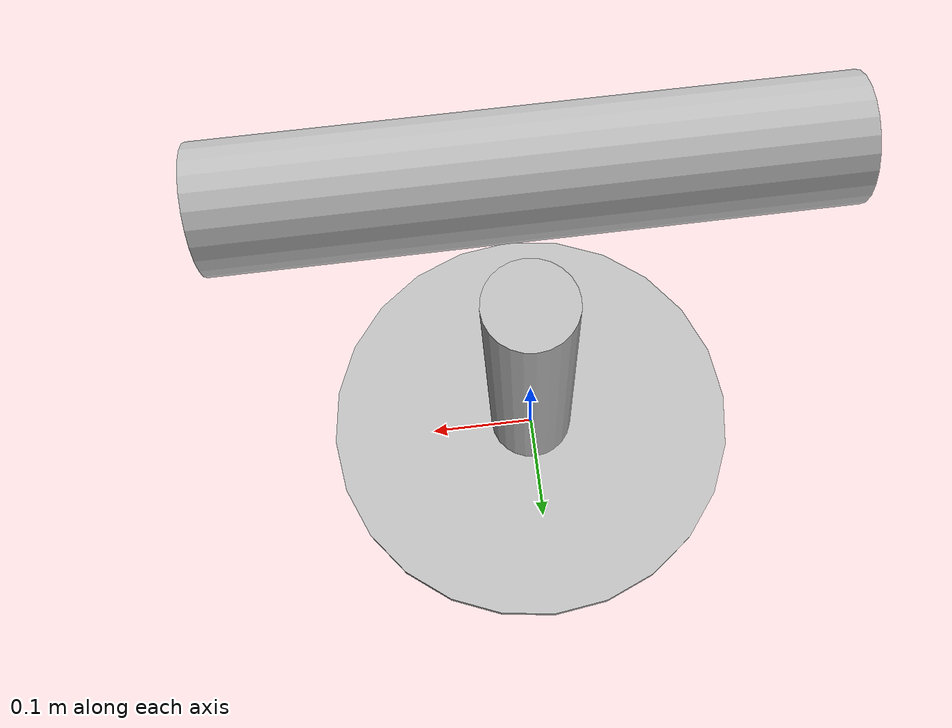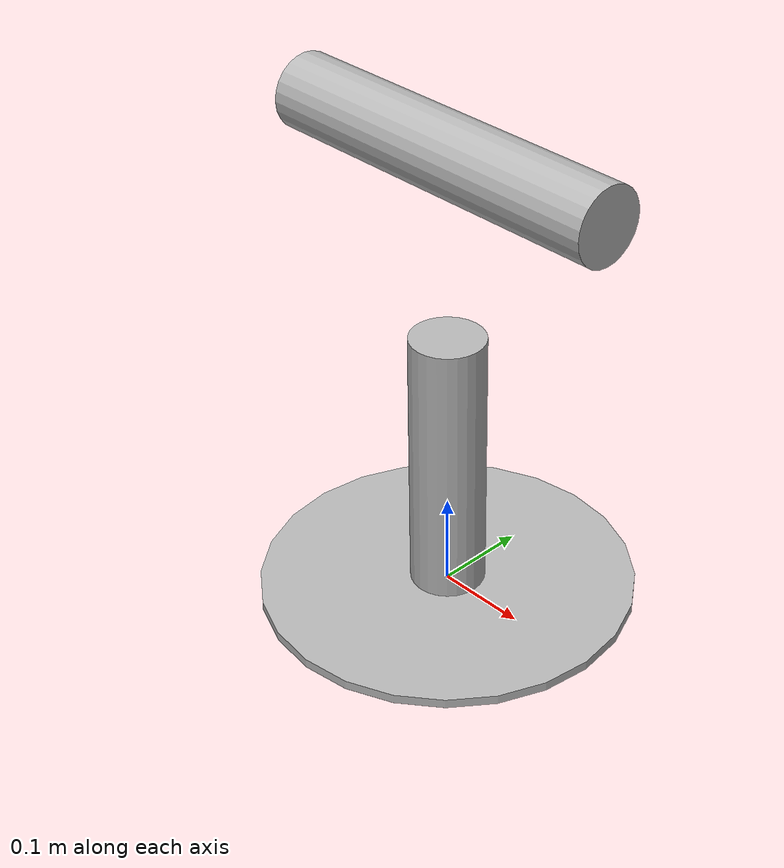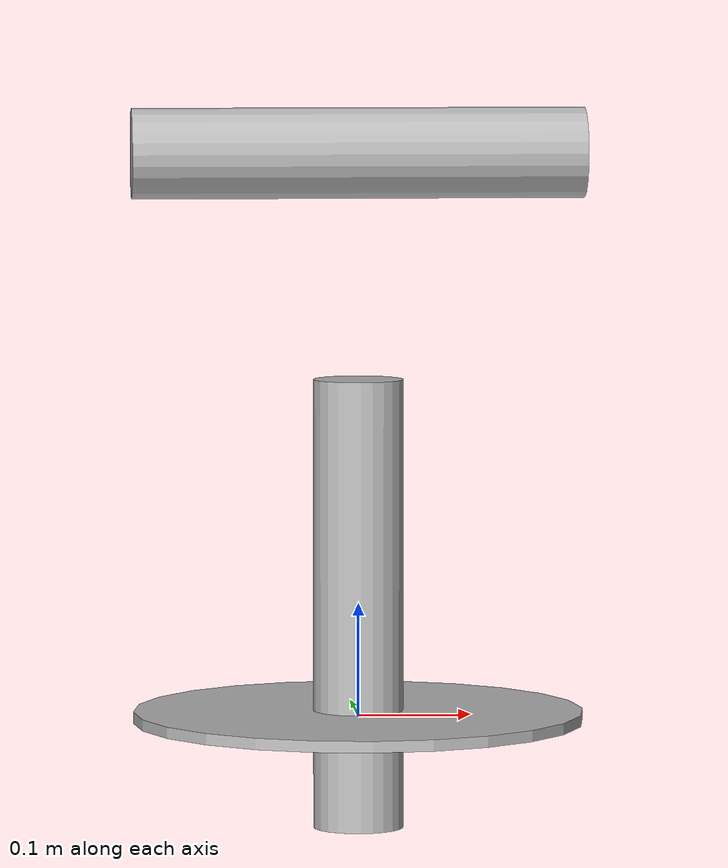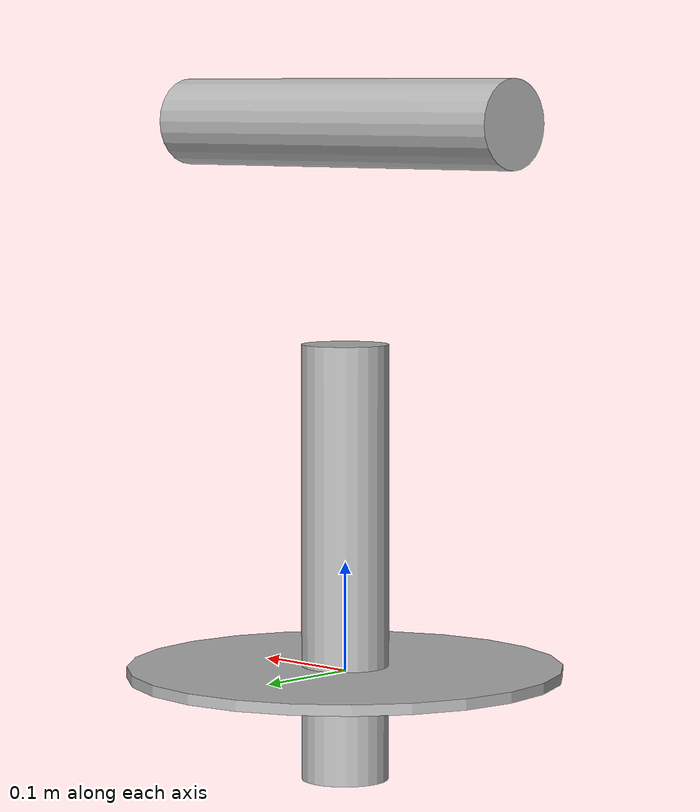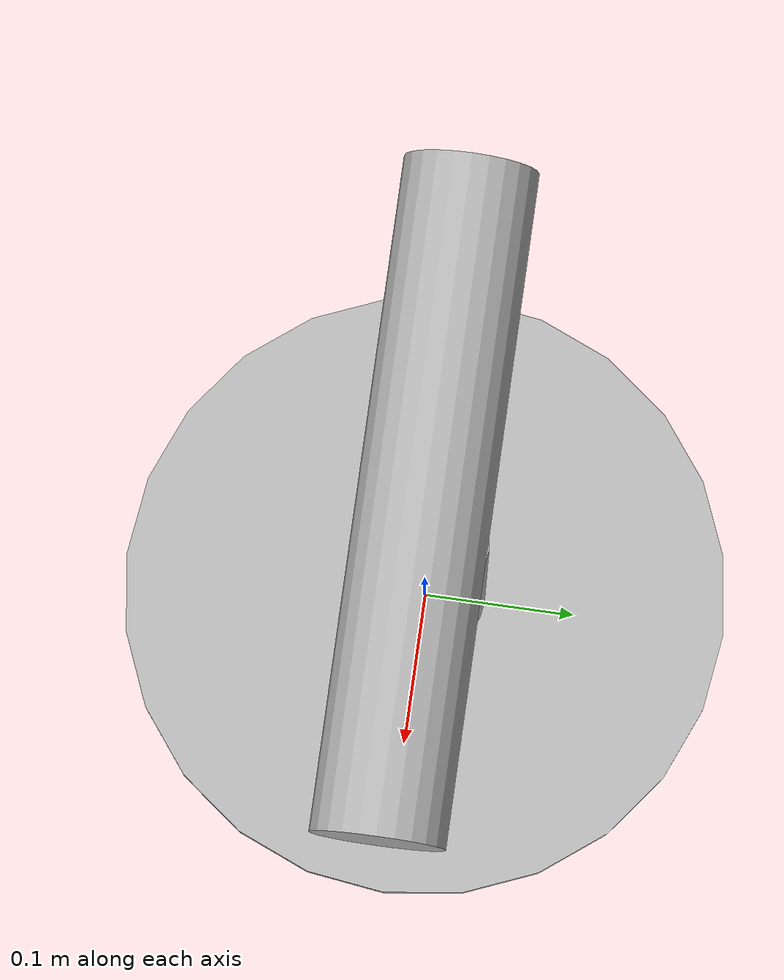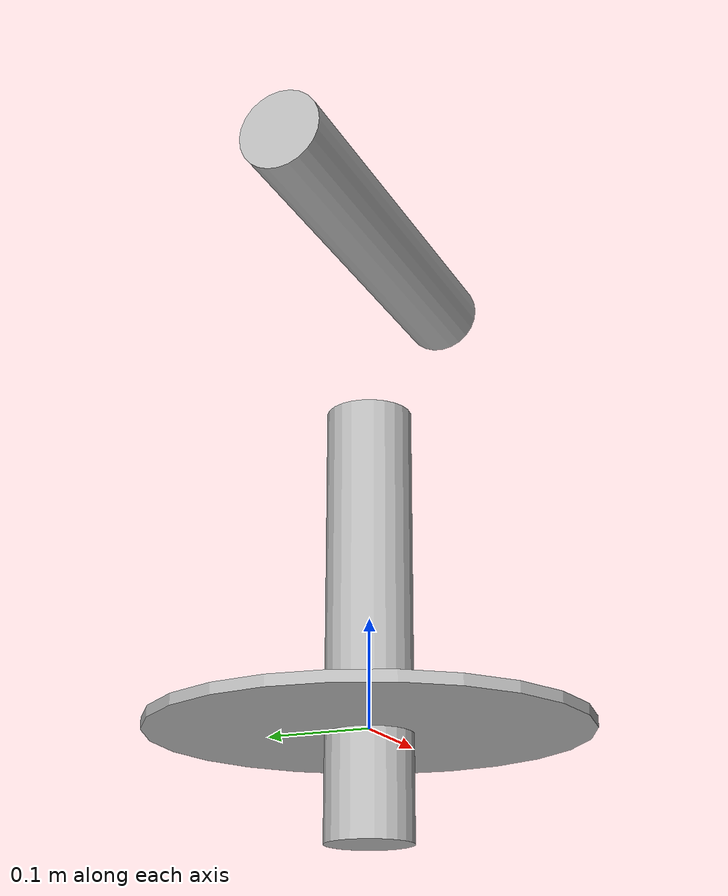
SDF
<sdf version='1.6'>
  <model name='pan_tilt'>
    <link name='base_link'>
      <pose frame=''>0 0 0 0 -0 0</pose>
      <inertial>
        <pose frame=''>0 0 0 0 -0 0</pose>
        <mass>1</mass>
        <inertia>
          <ixx>0.5</ixx>
          <ixy>0</ixy>
          <ixz>0</ixz>
          <iyy>0.5</iyy>
          <iyz>0</iyz>
          <izz>0.5</izz>
        </inertia>
      </inertial>
      <collision name='base_link_collision'>
        <pose frame=''>0 0 0 0 -0 0</pose>
        <geometry>
          <cylinder>
            <length>0.03</length>
            <radius>0.2</radius>
          </cylinder>
        </geometry>
      </collision>
      <visual name='base_link_visual'>
        <pose frame=''>0 0 0 0 -0 0</pose>
        <geometry>
          <cylinder>
            <length>0.01</length>
            <radius>0.2</radius>
          </cylinder>
        </geometry>
      </visual>
    </link>
    <link name='pan_link'>
      <pose frame=''>0 0 0.1 0 -0 0</pose>
      <inertial>
        <pose frame=''>0 0 0 0 -0 0</pose>
        <mass>1</mass>
        <inertia>
          <ixx>0.5</ixx>
          <ixy>0</ixy>
          <ixz>0</ixz>
          <iyy>0.5</iyy>
          <iyz>0</iyz>
          <izz>0.5</izz>
        </inertia>
      </inertial>
      <collision name='pan_link_collision'>
        <pose frame=''>0 0 0 0 -0 0</pose>
        <geometry>
          <cylinder>
            <length>0.4</length>
            <radius>0.06</radius>
          </cylinder>
        </geometry>
      </collision>
      <visual name='pan_link_visual'>
        <pose frame=''>0 0 0 0 -0 0</pose>
        <geometry>
          <cylinder>
            <length>0.4</length>
            <radius>0.04</radius>
          </cylinder>
        </geometry>
      </visual>
    </link>
    <joint name='pan_joint' type='revolute'>
      <child>pan_link</child>
      <parent>base_link</parent>
      <axis>
        <xyz>0 0 1</xyz>
        <limit>
          <lower>-3.14</lower>
          <upper>3.14</upper>
          <effort>300</effort>
          <velocity>0.1</velocity>
        </limit>
        <dynamics>
          <damping>50</damping>
          <friction>1</friction>
          <spring_reference>0</spring_reference>
          <spring_stiffness>0</spring_stiffness>
        </dynamics>
        <use_parent_model_frame>1</use_parent_model_frame>
      </axis>
    </joint>
    <link name='tilt_link'>
      <pose frame=''>0 0 0.5 0 -0 0</pose>
      <inertial>
        <pose frame=''>0 0 0 0 -0 0</pose>
        <mass>1</mass>
        <inertia>
          <ixx>0.5</ixx>
          <ixy>0</ixy>
          <ixz>0</ixz>
          <iyy>0.5</iyy>
          <iyz>0</iyz>
          <izz>0.5</izz>
        </inertia>
      </inertial>
      <collision name='tilt_link_collision'>
        <pose frame=''>0 0 0 0 1.57 0</pose>
        <geometry>
          <cylinder>
            <length>0.4</length>
            <radius>0.24</radius>
          </cylinder>
        </geometry>
      </collision>
      <visual name='tilt_link_visual'>
        <pose frame=''>0 0 0 0 1.57 0</pose>
        <geometry>
          <cylinder>
            <length>0.4</length>
            <radius>0.04</radius>
          </cylinder>
        </geometry>
      </visual>
    </link>
    <joint name='tilt_joint' type='revolute'>
      <child>tilt_link</child>
      <parent>pan_link</parent>
      <axis>
        <xyz>0 1 0</xyz>
        <limit>
          <lower>0</lower>
          <upper>0</upper>
          <effort>300</effort>
          <velocity>0.1</velocity>
        </limit>
        <dynamics>
          <damping>50</damping>
          <friction>1</friction>
          <spring_reference>0</spring_reference>
          <spring_stiffness>0</spring_stiffness>
        </dynamics>
        <use_parent_model_frame>1</use_parent_model_frame>
      </axis>
    </joint>
  </model>
</sdf>
